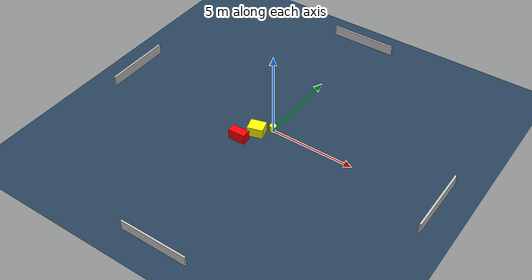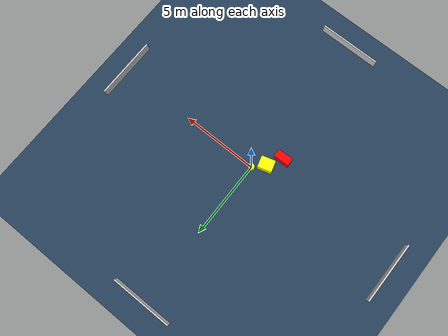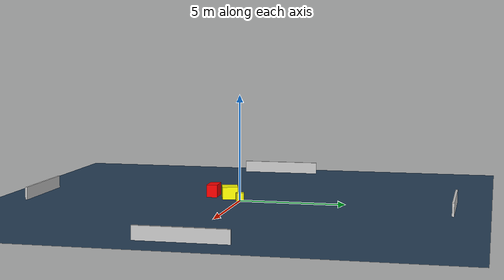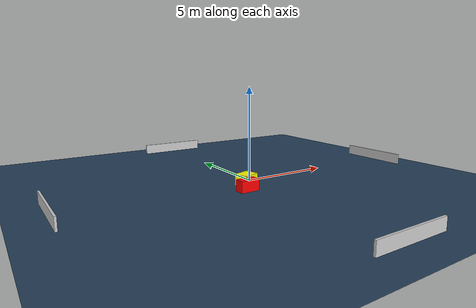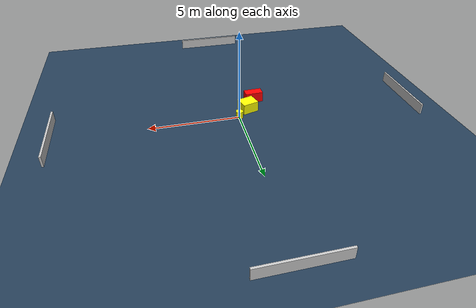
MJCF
<?xml version="1.0" ?>
<mujoco model="generated_environment">
  <option timestep="0.01" integrator="RK4" cone="elliptic"/>
  <default>
    <geom density="1"/>
  </default>
  <asset>
    <texture builtin="gradient" height="3072" name="skybox" rgb1="0.3 0.5 0.7" rgb2="0 0 0" type="skybox" width="512"/>
    <texture builtin="checker" height="300" name="groundplane" rgb1="0.2 0.3 0.4" rgb2="0.1 0.2 0.3" type="2d" width="300"/>
    <material name="groundplane" reflectance="0.2" texrepeat="5 5" texture="groundplane"/>
  </asset>
  <worldbody>
    <light dir="0 0 -1" directional="true" pos="0 0 1.5"/>
    <geom condim="3" friction="0.5 0.005 0.001" material="groundplane" name="floor" pos="0 0 0" size="0 0 0.05" type="plane"/>
    <body name="walls">
      <geom name="wall_1" condim="4" pos="-10.0 0.0 0.3" rgba="0.800000011920929 0.800000011920929 0.800000011920929 1.0" size="0.05 2.0 0.3" type="box"/>
      <geom name="wall_2" condim="4" pos="10.0 0.0 0.3" rgba="0.800000011920929 0.800000011920929 0.800000011920929 1.0" size="0.05 2.0 0.3" type="box"/>
      <geom name="wall_3" condim="4" pos="0.0 -10.0 0.3" rgba="0.800000011920929 0.800000011920929 0.800000011920929 1.0" size="2.0 0.05 0.3" type="box"/>
      <geom name="wall_4" condim="4" pos="0.0 10.0 0.3" rgba="0.800000011920929 0.800000011920929 0.800000011920929 1.0" size="2.0 0.05 0.3" type="box"/>
    </body>
    <body name="robot">
      <joint name="joint_x" type="slide" pos="0 0 0" axis="1 0 0"/>
      <joint name="joint_y" type="slide" pos="0 0 0" axis="0 1 0"/>
      <geom name="robot" type="cylinder" pos="0.0 0.0 0.2" size="0.2 0.2 0.0" mass="5.0" friction="1.0 0.005 0.0001" condim="4" rgba="1.0 1.0 0.0 1.0"/>
    </body>
    <body name="obstacle_1_movable">
      <geom name="obstacle_1_movable" condim="4" pos="-0.6405337488569572 -0.6473498246209071 0.3" euler="0 0 16.47519407027307" friction="0.0 0.005 0.001" rgba="1.0 1.0 0.0 1.0" size="0.4564648779482937 0.3772871685893673 0.3" type="box" mass="0.1"/>
      <joint type="free"/>
    </body>
    <body name="obstacle_2_static">
      <geom name="obstacle_2_static" condim="4" pos="-1.1954494818673587 -1.5841485417915773 0.3" euler="0 0 272.16184983578125" friction="0.0 0.005 0.001" rgba="1.0 0.0 0.0 1.0" size="0.2546329578306594 0.5067985404374971 0.3" type="box"/>
    </body>
  </worldbody>
  <actuator>
    <motor name="actuator_x" joint="joint_x" gear="1" ctrlrange="-1 1"/>
    <motor name="actuator_y" joint="joint_y" gear="1" ctrlrange="-1 1"/>
  </actuator>
</mujoco>
